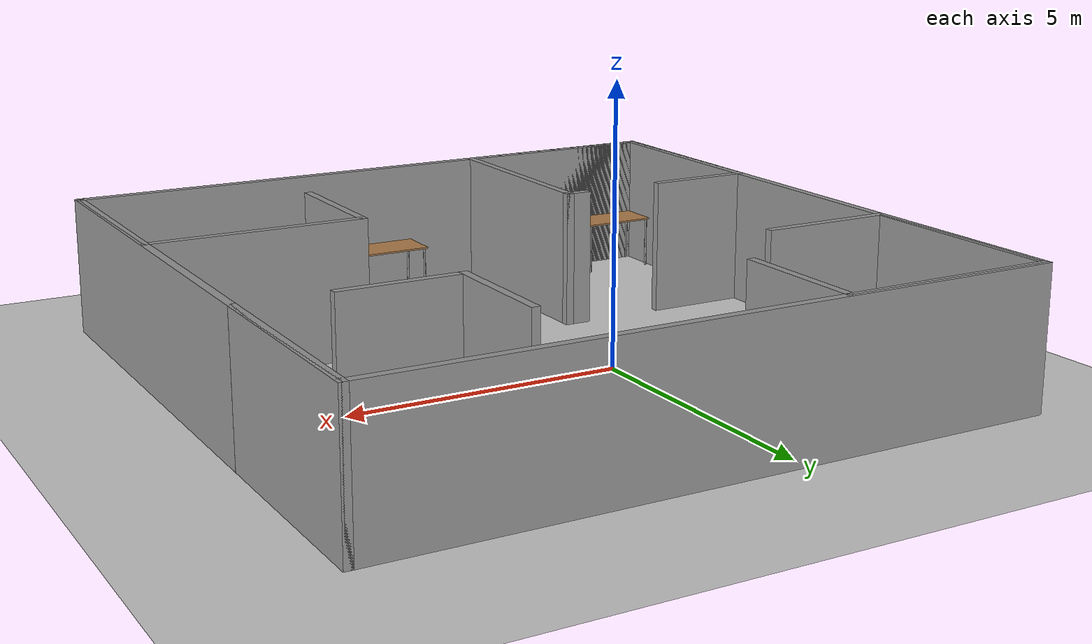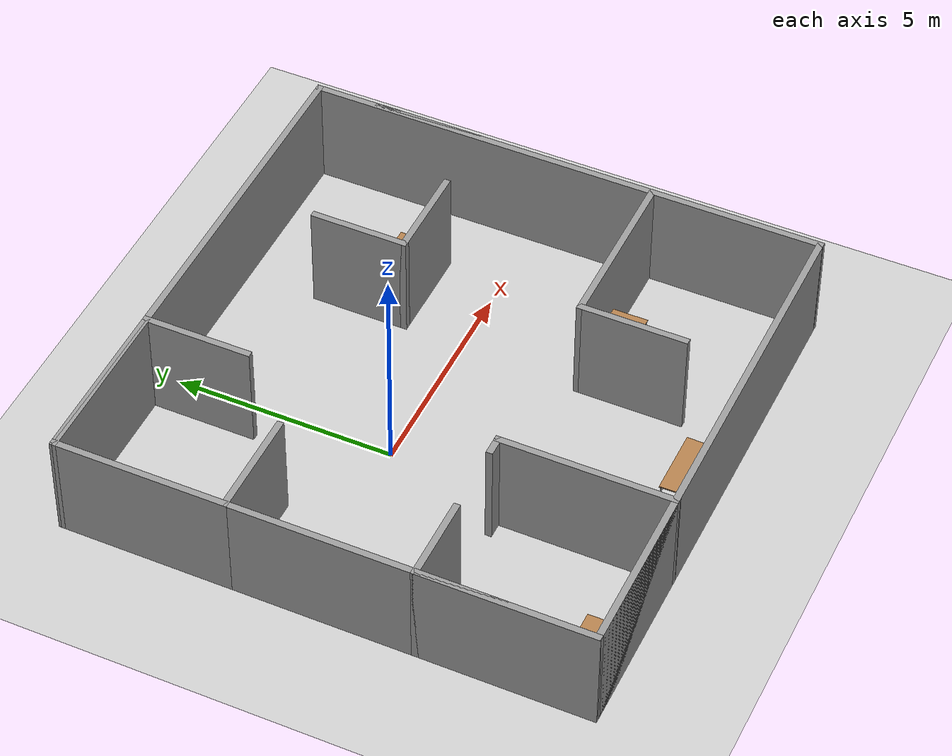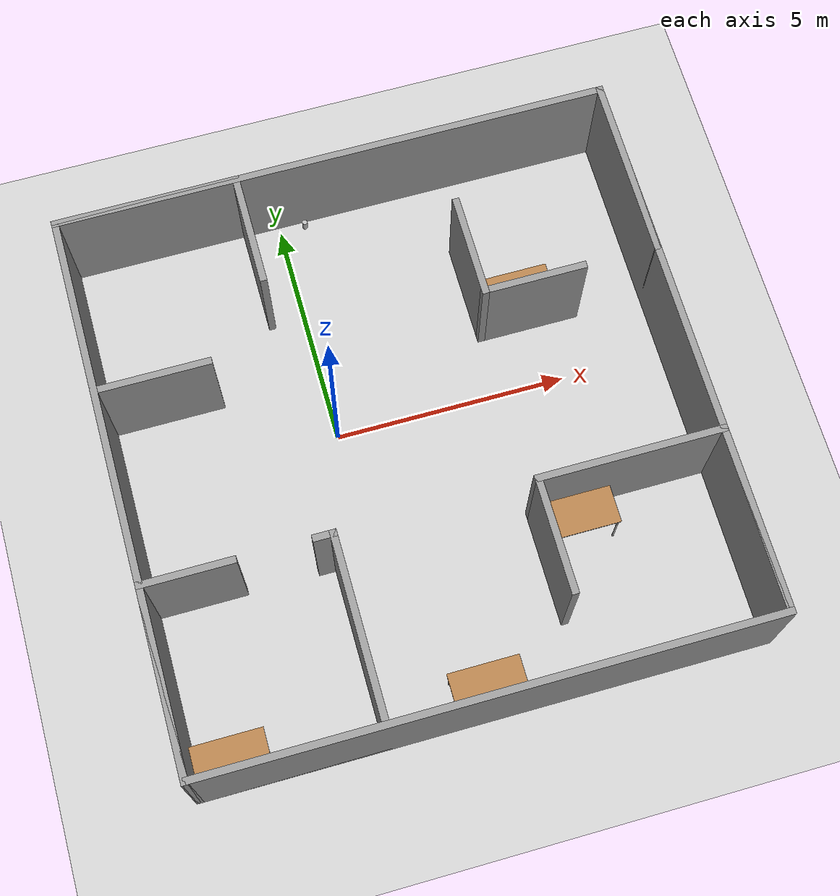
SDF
<sdf version="1.6">
 <world name="default">
  <light name="sun" type="directional">
   <pose>0 0 10 0 -0 0</pose>
   <diffuse>0.8 0.8 0.8 1</diffuse>
   <specular>0.2 0.2 0.2 1</specular>
   <attenuation>
    <range>1000</range>
    <constant>0.9</constant>
    <linear>0.01</linear>
    <quadratic>0.001</quadratic>
   </attenuation>
   <direction>-0.5 0.1 -0.9</direction>
  </light>
  <physics name="dart_2ms" default="1" type="dart">
   <max_step_size>0.002</max_step_size>
   <real_time_factor>1</real_time_factor>
   <real_time_update_rate>500</real_time_update_rate>
  </physics>
  <model name="ground_plane">
   <static>1</static>
   <link name="link">
    <collision name="collision">
     <geometry><plane><normal>0 0 1</normal><size>100 100</size></plane></geometry>
     <surface>
      <contact><collide_bitmask>65535</collide_bitmask></contact>
      <friction><ode><mu>100</mu><mu2>50</mu2></ode></friction>
     </surface>
    </collision>
    <visual name="visual">
     <cast_shadows>0</cast_shadows>
     <geometry><plane><normal>0 0 1</normal><size>100 100</size></plane></geometry>
     <material>
      <script><uri>file://media/materials/scripts/gazebo.material</uri><name>Gazebo/Grey</name></script>
     </material>
    </visual>
   </link>
  </model>
  <gravity>0 0 -9.8</gravity>
  <magnetic_field>6e-06 2.3e-05 -4.2e-05</magnetic_field>
  <atmosphere type="adiabatic"/>
  <scene><ambient>0.4 0.4 0.4 1</ambient><background>0.7 0.7 0.7 1</background><shadows>1</shadows></scene>
  <audio><device>default</device></audio>
  <spherical_coordinates>
   <surface_model>EARTH_WGS84</surface_model>
   <latitude_deg>0</latitude_deg>
   <longitude_deg>0</longitude_deg>
   <elevation>0</elevation>
   <heading_deg>0</heading_deg>
  </spherical_coordinates>
  <model name="velma_experiments_lab">
   <pose>1.33433 -0.6868 0 0 -0 0</pose>
   <link name="Wall_1">
    <collision name="Wall_1_Collision">
     <geometry><box><size>12 0.15 2.5</size></box></geometry>
     <pose>0 0 1.25 0 -0 0</pose>
    </collision>
    <visual name="Wall_1_Visual">
     <pose>0 0 1.25 0 -0 0</pose>
     <geometry><box><size>12 0.15 2.5</size></box></geometry>
     <material>
      <script><uri>file://media/materials/scripts/gazebo.material</uri><name>Gazebo/Grey</name></script>
      <ambient>1 1 1 1</ambient>
     </material>
     <meta><layer>0</layer></meta>
    </visual>
    <pose>0 -5.925 0 0 -0 0</pose>
   </link>
   <link name="Wall_10">
    <collision name="Wall_10_Collision">
     <geometry><box><size>4 0.15 2.5</size></box></geometry>
     <pose>0 0 1.25 0 -0 0</pose>
    </collision>
    <visual name="Wall_10_Visual">
     <pose>0 0 1.25 0 -0 0</pose>
     <geometry><box><size>4 0.15 2.5</size></box></geometry>
     <material>
      <script><uri>file://media/materials/scripts/gazebo.material</uri><name>Gazebo/Grey</name></script>
      <ambient>1 1 1 1</ambient>
     </material>
     <meta><layer>0</layer></meta>
    </visual>
    <pose>-5.925 4 0 0 -0 -1.5708</pose>
   </link>
   <link name="Wall_11">
    <collision name="Wall_11_Collision">
     <geometry><box><size>2.5 0.15 2.5</size></box></geometry>
     <pose>0 0 1.25 0 -0 0</pose>
    </collision>
    <visual name="Wall_11_Visual">
     <pose>0 0 1.25 0 -0 0</pose>
     <geometry><box><size>2.5 0.15 2.5</size></box></geometry>
     <material>
      <script><uri>file://media/materials/scripts/gazebo.material</uri><name>Gazebo/Grey</name></script>
      <ambient>1 1 1 1</ambient>
     </material>
     <meta><layer>0</layer></meta>
    </visual>
    <pose>-4.75 2.075 0 0 -0 0</pose>
   </link>
   <link name="Wall_13">
    <collision name="Wall_13_Collision">
     <geometry><box><size>4 0.15 2.5</size></box></geometry>
     <pose>0 0 1.25 0 -0 0</pose>
    </collision>
    <visual name="Wall_13_Visual">
     <pose>0 0 1.25 0 -0 0</pose>
     <geometry><box><size>4 0.15 2.5</size></box></geometry>
     <material>
      <script><uri>file://media/materials/scripts/gazebo.material</uri><name>Gazebo/Grey</name></script>
      <ambient>1 1 1 1</ambient>
     </material>
     <meta><layer>0</layer></meta>
    </visual>
    <pose>-5.925 -4 0 0 -0 1.5708</pose>
   </link>
   <link name="Wall_14">
    <collision name="Wall_14_Collision">
     <geometry><box><size>2 0.15 2.5</size></box></geometry>
     <pose>0 0 1.25 0 -0 0</pose>
    </collision>
    <visual name="Wall_14_Visual">
     <pose>0 0 1.25 0 -0 0</pose>
     <geometry><box><size>2 0.15 2.5</size></box></geometry>
     <material>
      <script><uri>file://media/materials/scripts/gazebo.material</uri><name>Gazebo/Grey</name></script>
      <ambient>1 1 1 1</ambient>
     </material>
     <meta><layer>0</layer></meta>
    </visual>
    <pose>-5 -2.075 0 0 -0 0</pose>
   </link>
   <link name="Wall_16">
    <collision name="Wall_16_Collision">
     <geometry><box><size>4 0.15 2.5</size></box></geometry>
     <pose>0 0 1.25 0 -0 0</pose>
    </collision>
    <visual name="Wall_16_Visual">
     <pose>0 0 1.25 0 -0 0</pose>
     <geometry><box><size>4 0.15 2.5</size></box></geometry>
     <material>
      <script><uri>file://media/materials/scripts/gazebo.material</uri><name>Gazebo/Grey</name></script>
      <ambient>1 1 1 1</ambient>
     </material>
     <meta><layer>0</layer></meta>
    </visual>
    <pose>-4 -5.925 0 0 -0 0</pose>
   </link>
   <link name="Wall_17">
    <collision name="Wall_17_Collision">
     <geometry><box><size>4 0.15 2.5</size></box></geometry>
     <pose>0 0 1.25 0 -0 0</pose>
    </collision>
    <visual name="Wall_17_Visual">
     <pose>0 0 1.25 0 -0 0</pose>
     <geometry><box><size>4 0.15 2.5</size></box></geometry>
     <material>
      <script><uri>file://media/materials/scripts/gazebo.material</uri><name>Gazebo/Grey</name></script>
      <ambient>1 1 1 1</ambient>
     </material>
     <meta><layer>0</layer></meta>
    </visual>
    <pose>-2.075 -4 0 0 -0 1.5708</pose>
   </link>
   <link name="Wall_18">
    <collision name="Wall_18_Collision">
     <geometry><box><size>0.5 0.15 2.5</size></box></geometry>
     <pose>0 0 1.25 0 -0 0</pose>
    </collision>
    <visual name="Wall_18_Visual">
     <pose>0 0 1.25 0 -0 0</pose>
     <geometry><box><size>0.5 0.15 2.5</size></box></geometry>
     <material>
      <script><uri>file://media/materials/scripts/gazebo.material</uri><name>Gazebo/Grey</name></script>
      <ambient>1 1 1 1</ambient>
     </material>
     <meta><layer>0</layer></meta>
    </visual>
    <pose>-2.25 -2.075 0 0 -0 3.14159</pose>
   </link>
   <link name="Wall_20">
    <collision name="Wall_20_Collision">
     <geometry><box><size>4 0.15 2.5</size></box></geometry>
     <pose>0 0 1.25 0 -0 0</pose>
    </collision>
    <visual name="Wall_20_Visual">
     <pose>0 0 1.25 0 -0 0</pose>
     <geometry><box><size>4 0.15 2.5</size></box></geometry>
     <material>
      <script><uri>file://media/materials/scripts/gazebo.material</uri><name>Gazebo/Grey</name></script>
      <ambient>1 1 1 1</ambient>
     </material>
     <meta><layer>0</layer></meta>
    </visual>
    <pose>5.925 -4 0 0 -0 1.5708</pose>
   </link>
   <link name="Wall_21">
    <collision name="Wall_21_Collision">
     <geometry><box><size>4 0.15 2.5</size></box></geometry>
     <pose>0 0 1.25 0 -0 0</pose>
    </collision>
    <visual name="Wall_21_Visual">
     <pose>0 0 1.25 0 -0 0</pose>
     <geometry><box><size>4 0.15 2.5</size></box></geometry>
     <material>
      <script><uri>file://media/materials/scripts/gazebo.material</uri><name>Gazebo/Grey</name></script>
      <ambient>1 1 1 1</ambient>
     </material>
     <meta><layer>0</layer></meta>
    </visual>
    <pose>4 -2.075 0 0 -0 3.14159</pose>
   </link>
   <link name="Wall_22">
    <collision name="Wall_22_Collision">
     <geometry><box><size>2.5 0.15 2.5</size></box></geometry>
     <pose>0 0 1.25 0 -0 0</pose>
    </collision>
    <visual name="Wall_22_Visual">
     <pose>0 0 1.25 0 -0 0</pose>
     <geometry><box><size>2.5 0.15 2.5</size></box></geometry>
     <material>
      <script><uri>file://media/materials/scripts/gazebo.material</uri><name>Gazebo/Grey</name></script>
      <ambient>1 1 1 1</ambient>
     </material>
     <meta><layer>0</layer></meta>
    </visual>
    <pose>2.075 -3.25 0 0 -0 -1.5708</pose>
   </link>
   <link name="Wall_24">
    <collision name="Wall_24_Collision">
     <geometry><box><size>4 0.15 2.5</size></box></geometry>
     <pose>0 0 1.25 0 -0 0</pose>
    </collision>
    <visual name="Wall_24_Visual">
     <pose>0 0 1.25 0 -0 0</pose>
     <geometry><box><size>4 0.15 2.5</size></box></geometry>
     <material>
      <script><uri>file://media/materials/scripts/gazebo.material</uri><name>Gazebo/Grey</name></script>
      <ambient>1 1 1 1</ambient>
     </material>
     <meta><layer>0</layer></meta>
    </visual>
    <pose>5.925 4 0 0 -0 -1.5708</pose>
   </link>
   <link name="Wall_26">
    <collision name="Wall_26_Collision">
     <geometry><box><size>2.25 0.15 2.5</size></box></geometry>
     <pose>0 0 1.25 0 -0 0</pose>
    </collision>
    <visual name="Wall_26_Visual">
     <pose>0 0 1.25 0 -0 0</pose>
     <geometry><box><size>2.25 0.15 2.5</size></box></geometry>
     <material>
      <script><uri>file://media/materials/scripts/gazebo.material</uri><name>Gazebo/Grey</name></script>
      <ambient>1 1 1 1</ambient>
     </material>
     <meta><layer>0</layer></meta>
    </visual>
    <pose>3.275 2.075 0 0 -0 3.14159</pose>
   </link>
   <link name="Wall_27">
    <collision name="Wall_27_Collision">
     <geometry><box><size>2.25 0.15 2.5</size></box></geometry>
     <pose>0 0 1.25 0 -0 0</pose>
    </collision>
    <visual name="Wall_27_Visual">
     <pose>0 0 1.25 0 -0 0</pose>
     <geometry><box><size>2.25 0.15 2.5</size></box></geometry>
     <material>
      <script><uri>file://media/materials/scripts/gazebo.material</uri><name>Gazebo/Grey</name></script>
      <ambient>1 1 1 1</ambient>
     </material>
     <meta><layer>0</layer></meta>
    </visual>
    <pose>2.225 3.125 0 0 -0 1.5708</pose>
   </link>
   <link name="Wall_3">
    <collision name="Wall_3_Collision">
     <geometry><box><size>12 0.15 2.5</size></box></geometry>
     <pose>0 0 1.25 0 -0 0</pose>
    </collision>
    <visual name="Wall_3_Visual">
     <pose>0 0 1.25 0 -0 0</pose>
     <geometry><box><size>12 0.15 2.5</size></box></geometry>
     <material>
      <script><uri>file://media/materials/scripts/gazebo.material</uri><name>Gazebo/Grey</name></script>
      <ambient>1 1 1 1</ambient>
     </material>
     <meta><layer>0</layer></meta>
    </visual>
    <pose>5.925 -0 0 0 -0 1.5708</pose>
   </link>
   <link name="Wall_4">
    <collision name="Wall_4_Collision">
     <geometry><box><size>12 0.15 2.5</size></box></geometry>
     <pose>0 0 1.25 0 -0 0</pose>
    </collision>
    <visual name="Wall_4_Visual">
     <pose>0 0 1.25 0 -0 0</pose>
     <geometry><box><size>12 0.15 2.5</size></box></geometry>
     <material>
      <script><uri>file://media/materials/scripts/gazebo.material</uri><name>Gazebo/Grey</name></script>
      <ambient>1 1 1 1</ambient>
     </material>
     <meta><layer>0</layer></meta>
    </visual>
    <pose>0 5.925 0 0 -0 3.14159</pose>
   </link>
   <link name="Wall_5">
    <collision name="Wall_5_Collision">
     <geometry><box><size>12 0.15 2.5</size></box></geometry>
     <pose>0 0 1.25 0 -0 0</pose>
    </collision>
    <visual name="Wall_5_Visual">
     <pose>0 0 1.25 0 -0 0</pose>
     <geometry><box><size>12 0.15 2.5</size></box></geometry>
     <material>
      <script><uri>file://media/materials/scripts/gazebo.material</uri><name>Gazebo/Grey</name></script>
      <ambient>1 1 1 1</ambient>
     </material>
     <meta><layer>0</layer></meta>
    </visual>
    <pose>-5.925 -0 0 0 -0 -1.5708</pose>
   </link>
   <link name="Wall_7">
    <collision name="Wall_7_Collision">
     <geometry><box><size>4 0.15 2.5</size></box></geometry>
     <pose>0 0 1.25 0 -0 0</pose>
    </collision>
    <visual name="Wall_7_Visual">
     <pose>0 0 1.25 0 -0 0</pose>
     <geometry><box><size>4 0.15 2.5</size></box></geometry>
     <material>
      <script><uri>file://media/materials/scripts/gazebo.material</uri><name>Gazebo/Grey</name></script>
      <ambient>1 1 1 1</ambient>
     </material>
     <meta><layer>0</layer></meta>
    </visual>
    <pose>-4 5.925 0 0 -0 0</pose>
   </link>
   <link name="Wall_8">
    <collision name="Wall_8_Collision">
     <geometry><box><size>2.5 0.15 2.5</size></box></geometry>
     <pose>0 0 1.25 0 -0 0</pose>
    </collision>
    <visual name="Wall_8_Visual">
     <pose>0 0 1.25 0 -0 0</pose>
     <geometry><box><size>2.5 0.15 2.5</size></box></geometry>
     <material>
      <script><uri>file://media/materials/scripts/gazebo.material</uri><name>Gazebo/Grey</name></script>
      <ambient>1 1 1 1</ambient>
     </material>
     <meta><layer>0</layer></meta>
    </visual>
    <pose>-2.075 4.75 0 0 -0 -1.5708</pose>
   </link>
   <static>1</static>
  </model>
  <model name="table">
   <static>1</static>
   <link name="link">
    <collision name="surface">
     <pose>0 0 1 0 -0 0</pose>
     <geometry><box><size>1.5 0.8 0.03</size></box></geometry>
     <surface><friction><ode><mu>0.6</mu><mu2>0.6</mu2></ode></friction></surface>
    </collision>
    <visual name="visual1">
     <pose>0 0 1 0 -0 0</pose>
     <geometry><box><size>1.5 0.8 0.03</size></box></geometry>
     <material>
      <script><uri>file://media/materials/scripts/gazebo.material</uri><name>Gazebo/Wood</name></script>
     </material>
    </visual>
    <collision name="front_left_leg">
     <pose>0.68 0.38 0.5 0 -0 0</pose>
     <geometry><cylinder><radius>0.02</radius><length>1</length></cylinder></geometry>
    </collision>
    <visual name="front_left_leg">
     <pose>0.68 0.38 0.5 0 -0 0</pose>
     <geometry><cylinder><radius>0.02</radius><length>1</length></cylinder></geometry>
     <material>
      <script><uri>file://media/materials/scripts/gazebo.material</uri><name>Gazebo/Grey</name></script>
     </material>
    </visual>
    <collision name="front_right_leg">
     <pose>0.68 -0.38 0.5 0 -0 0</pose>
     <geometry><cylinder><radius>0.02</radius><length>1</length></cylinder></geometry>
    </collision>
    <visual name="front_right_leg">
     <pose>0.68 -0.38 0.5 0 -0 0</pose>
     <geometry><cylinder><radius>0.02</radius><length>1</length></cylinder></geometry>
     <material>
      <script><uri>file://media/materials/scripts/gazebo.material</uri><name>Gazebo/Grey</name></script>
     </material>
    </visual>
    <collision name="back_right_leg">
     <pose>-0.68 -0.38 0.5 0 -0 0</pose>
     <geometry><cylinder><radius>0.02</radius><length>1</length></cylinder></geometry>
    </collision>
    <visual name="back_right_leg">
     <pose>-0.68 -0.38 0.5 0 -0 0</pose>
     <geometry><cylinder><radius>0.02</radius><length>1</length></cylinder></geometry>
     <material>
      <script><uri>file://media/materials/scripts/gazebo.material</uri><name>Gazebo/Grey</name></script>
     </material>
    </visual>
    <collision name="back_left_leg">
     <pose>-0.68 0.38 0.5 0 -0 0</pose>
     <geometry><cylinder><radius>0.02</radius><length>1</length></cylinder></geometry>
    </collision>
    <visual name="back_left_leg">
     <pose>-0.68 0.38 0.5 0 -0 0</pose>
     <geometry><cylinder><radius>0.02</radius><length>1</length></cylinder></geometry>
     <material>
      <script><uri>file://media/materials/scripts/gazebo.material</uri><name>Gazebo/Grey</name></script>
     </material>
    </visual>
   </link>
   <pose>-3.7505 -6.14398 0 0 -0 0</pose>
  </model>
  <model name="table_0">
   <static>1</static>
   <link name="link">
    <collision name="surface">
     <pose>0 0 1 0 -0 0</pose>
     <geometry><box><size>1.5 0.8 0.03</size></box></geometry>
     <surface><friction><ode><mu>0.6</mu><mu2>0.6</mu2></ode></friction></surface>
    </collision>
    <visual name="visual1">
     <pose>0 0 1 0 -0 0</pose>
     <geometry><box><size>1.5 0.8 0.03</size></box></geometry>
     <material>
      <script><uri>file://media/materials/scripts/gazebo.material</uri><name>Gazebo/Wood</name></script>
     </material>
    </visual>
    <collision name="front_left_leg">
     <pose>0.68 0.38 0.5 0 -0 0</pose>
     <geometry><cylinder><radius>0.02</radius><length>1</length></cylinder></geometry>
    </collision>
    <visual name="front_left_leg">
     <pose>0.68 0.38 0.5 0 -0 0</pose>
     <geometry><cylinder><radius>0.02</radius><length>1</length></cylinder></geometry>
     <material>
      <script><uri>file://media/materials/scripts/gazebo.material</uri><name>Gazebo/Grey</name></script>
     </material>
    </visual>
    <collision name="front_right_leg">
     <pose>0.68 -0.38 0.5 0 -0 0</pose>
     <geometry><cylinder><radius>0.02</radius><length>1</length></cylinder></geometry>
    </collision>
    <visual name="front_right_leg">
     <pose>0.68 -0.38 0.5 0 -0 0</pose>
     <geometry><cylinder><radius>0.02</radius><length>1</length></cylinder></geometry>
     <material>
      <script><uri>file://media/materials/scripts/gazebo.material</uri><name>Gazebo/Grey</name></script>
     </material>
    </visual>
    <collision name="back_right_leg">
     <pose>-0.68 -0.38 0.5 0 -0 0</pose>
     <geometry><cylinder><radius>0.02</radius><length>1</length></cylinder></geometry>
    </collision>
    <visual name="back_right_leg">
     <pose>-0.68 -0.38 0.5 0 -0 0</pose>
     <geometry><cylinder><radius>0.02</radius><length>1</length></cylinder></geometry>
     <material>
      <script><uri>file://media/materials/scripts/gazebo.material</uri><name>Gazebo/Grey</name></script>
     </material>
    </visual>
    <collision name="back_left_leg">
     <pose>-0.68 0.38 0.5 0 -0 0</pose>
     <geometry><cylinder><radius>0.02</radius><length>1</length></cylinder></geometry>
    </collision>
    <visual name="back_left_leg">
     <pose>-0.68 0.38 0.5 0 -0 0</pose>
     <geometry><cylinder><radius>0.02</radius><length>1</length></cylinder></geometry>
     <material>
      <script><uri>file://media/materials/scripts/gazebo.material</uri><name>Gazebo/Grey</name></script>
     </material>
    </visual>
   </link>
   <pose>4.26607 -3.26806 0 0 -0 0</pose>
  </model>
  <model name="table_1">
   <static>1</static>
   <link name="link">
    <collision name="surface">
     <pose>0 0 1 0 -0 0</pose>
     <geometry><box><size>1.5 0.8 0.03</size></box></geometry>
     <surface><friction><ode><mu>0.6</mu><mu2>0.6</mu2></ode></friction></surface>
    </collision>
    <visual name="visual1">
     <pose>0 0 1 0 -0 0</pose>
     <geometry><box><size>1.5 0.8 0.03</size></box></geometry>
     <material>
      <script><uri>file://media/materials/scripts/gazebo.material</uri><name>Gazebo/Wood</name></script>
     </material>
    </visual>
    <collision name="front_left_leg">
     <pose>0.68 0.38 0.5 0 -0 0</pose>
     <geometry><cylinder><radius>0.02</radius><length>1</length></cylinder></geometry>
    </collision>
    <visual name="front_left_leg">
     <pose>0.68 0.38 0.5 0 -0 0</pose>
     <geometry><cylinder><radius>0.02</radius><length>1</length></cylinder></geometry>
     <material>
      <script><uri>file://media/materials/scripts/gazebo.material</uri><name>Gazebo/Grey</name></script>
     </material>
    </visual>
    <collision name="front_right_leg">
     <pose>0.68 -0.38 0.5 0 -0 0</pose>
     <geometry><cylinder><radius>0.02</radius><length>1</length></cylinder></geometry>
    </collision>
    <visual name="front_right_leg">
     <pose>0.68 -0.38 0.5 0 -0 0</pose>
     <geometry><cylinder><radius>0.02</radius><length>1</length></cylinder></geometry>
     <material>
      <script><uri>file://media/materials/scripts/gazebo.material</uri><name>Gazebo/Grey</name></script>
     </material>
    </visual>
    <collision name="back_right_leg">
     <pose>-0.68 -0.38 0.5 0 -0 0</pose>
     <geometry><cylinder><radius>0.02</radius><length>1</length></cylinder></geometry>
    </collision>
    <visual name="back_right_leg">
     <pose>-0.68 -0.38 0.5 0 -0 0</pose>
     <geometry><cylinder><radius>0.02</radius><length>1</length></cylinder></geometry>
     <material>
      <script><uri>file://media/materials/scripts/gazebo.material</uri><name>Gazebo/Grey</name></script>
     </material>
    </visual>
    <collision name="back_left_leg">
     <pose>-0.68 0.38 0.5 0 -0 0</pose>
     <geometry><cylinder><radius>0.02</radius><length>1</length></cylinder></geometry>
    </collision>
    <visual name="back_left_leg">
     <pose>-0.68 0.38 0.5 0 -0 0</pose>
     <geometry><cylinder><radius>0.02</radius><length>1</length></cylinder></geometry>
     <material>
      <script><uri>file://media/materials/scripts/gazebo.material</uri><name>Gazebo/Grey</name></script>
     </material>
    </visual>
   </link>
   <pose>4.48953 1.87671 0 0 -0 0</pose>
  </model>
  <model name="beer">
   <link name="link">
    <pose>0 0 0.115 0 -0 0</pose>
    <inertial>
     <mass>0.39</mass>
     <inertia><ixx>0.00058</ixx><ixy>0</ixy><ixz>0</ixz><iyy>0.00058</iyy><iyz>0</iyz><izz>0.00019</izz></inertia>
    </inertial>
    <collision name="collision">
     <geometry><cylinder><radius>0.055</radius><length>0.23</length></cylinder></geometry>
    </collision>
    <visual name="visual">
     <geometry><cylinder><radius>0.055</radius><length>0.23</length></cylinder></geometry>
     <material>
      <script>
       <uri>model://beer/materials/scripts</uri>
       <uri>model://beer/materials/textures</uri>
       <name>Beer/Diffuse</name>
      </script>
     </material>
    </visual>
   </link>
   <pose>0.510038 4.6447 0.77499 1e-06 -2.7e-05 0.001518</pose>
  </model>
  <model name="table_2">
   <static>1</static>
   <link name="link">
    <collision name="surface">
     <pose>0 0 1 0 -0 0</pose>
     <geometry><box><size>1.5 0.8 0.03</size></box></geometry>
     <surface><friction><ode><mu>0.6</mu><mu2>0.6</mu2></ode></friction></surface>
    </collision>
    <visual name="visual1">
     <pose>0 0 1 0 -0 0</pose>
     <geometry><box><size>1.5 0.8 0.03</size></box></geometry>
     <material>
      <script><uri>file://media/materials/scripts/gazebo.material</uri><name>Gazebo/Wood</name></script>
     </material>
    </visual>
    <collision name="front_left_leg">
     <pose>0.68 0.38 0.5 0 -0 0</pose>
     <geometry><cylinder><radius>0.02</radius><length>1</length></cylinder></geometry>
    </collision>
    <visual name="front_left_leg">
     <pose>0.68 0.38 0.5 0 -0 0</pose>
     <geometry><cylinder><radius>0.02</radius><length>1</length></cylinder></geometry>
     <material>
      <script><uri>file://media/materials/scripts/gazebo.material</uri><name>Gazebo/Grey</name></script>
     </material>
    </visual>
    <collision name="front_right_leg">
     <pose>0.68 -0.38 0.5 0 -0 0</pose>
     <geometry><cylinder><radius>0.02</radius><length>1</length></cylinder></geometry>
    </collision>
    <visual name="front_right_leg">
     <pose>0.68 -0.38 0.5 0 -0 0</pose>
     <geometry><cylinder><radius>0.02</radius><length>1</length></cylinder></geometry>
     <material>
      <script><uri>file://media/materials/scripts/gazebo.material</uri><name>Gazebo/Grey</name></script>
     </material>
    </visual>
    <collision name="back_right_leg">
     <pose>-0.68 -0.38 0.5 0 -0 0</pose>
     <geometry><cylinder><radius>0.02</radius><length>1</length></cylinder></geometry>
    </collision>
    <visual name="back_right_leg">
     <pose>-0.68 -0.38 0.5 0 -0 0</pose>
     <geometry><cylinder><radius>0.02</radius><length>1</length></cylinder></geometry>
     <material>
      <script><uri>file://media/materials/scripts/gazebo.material</uri><name>Gazebo/Grey</name></script>
     </material>
    </visual>
    <collision name="back_left_leg">
     <pose>-0.68 0.38 0.5 0 -0 0</pose>
     <geometry><cylinder><radius>0.02</radius><length>1</length></cylinder></geometry>
    </collision>
    <visual name="back_left_leg">
     <pose>-0.68 0.38 0.5 0 -0 0</pose>
     <geometry><cylinder><radius>0.02</radius><length>1</length></cylinder></geometry>
     <material>
      <script><uri>file://media/materials/scripts/gazebo.material</uri><name>Gazebo/Grey</name></script>
     </material>
    </visual>
   </link>
   <pose>1.46423 -6.11643 0 0 -0 0</pose>
  </model>
 </world>
</sdf>
